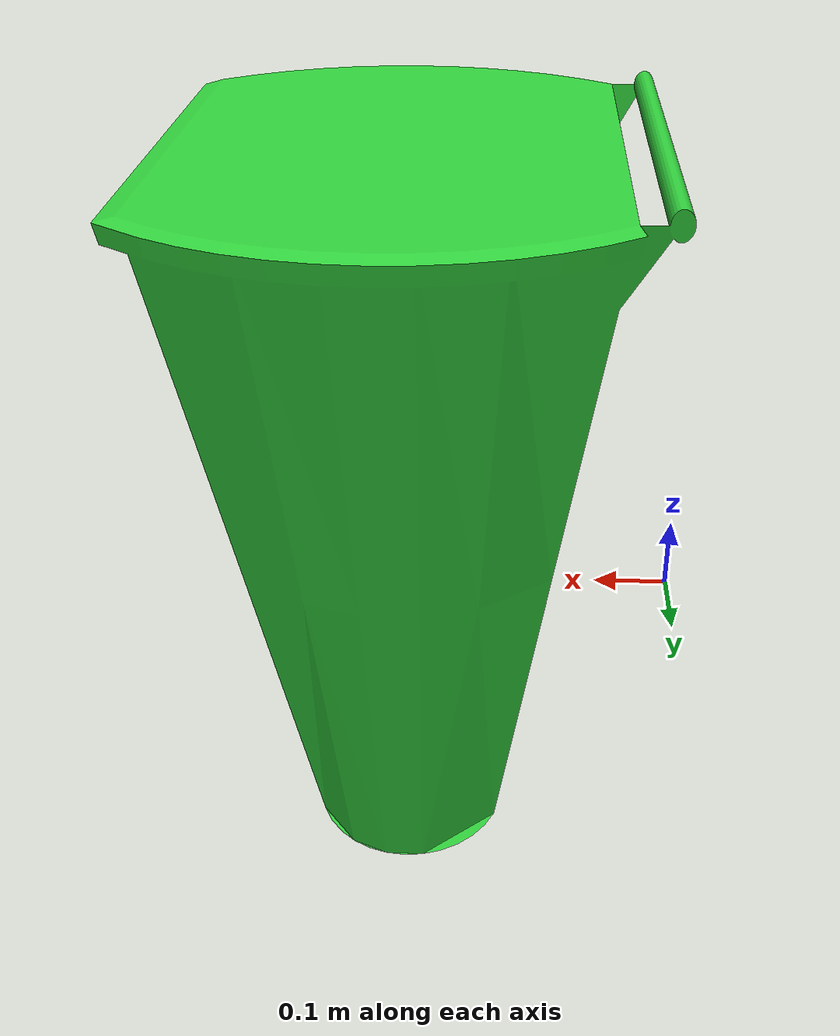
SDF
<?xml version='1.0'?>
<sdf version='1.6'>
  <model name='plastic_bin_within'>
    <link name='link_3'>
      <pose frame=''>0.009998 0.099998 0 0 -0 0</pose>
      <self_collide>0</self_collide>
      <enable_wind>0</enable_wind>
      <kinematic>0</kinematic>
      <gravity>0</gravity>
      <inertial>
        <mass>1</mass>
        <pose frame=''>0 0 0 0 -0 0</pose>
        <inertia>
          <ixx>1</ixx>
          <ixy>0</ixy>
          <ixz>0</ixz>
          <iyy>1</iyy>
          <iyz>0</iyz>
          <izz>1</izz>
        </inertia>
      </inertial>
      <visual name='visual'>
        <pose frame=''>0 0 0 0 -0 0</pose>
        <geometry>
          <mesh>
            <uri>model://green_bin/meshes/green_pyramid.stl</uri>
            <scale>0.5 0.5 0.7</scale>
          </mesh>
        </geometry>
        <material>
          <lighting>1</lighting>
          <ambient>0.188 0.811 0.231 1</ambient>
          <diffuse>0.188 0.811 0.231 1</diffuse>
          <specular>0.01 0.01 0.01 1</specular>
          <emissive>0 0 0 1</emissive>
          <shader type='vertex'>
            <normal_map>__default__</normal_map>
          </shader>
          <script>
            <name>ModelPreview_85::link_3::visual_MATERIAL_</name>
            <uri>__default__</uri>
          </script>
        </material>
        <cast_shadows>1</cast_shadows>
        <transparency>0</transparency>
      </visual>
      <collision name='collision'>
        <laser_retro>0</laser_retro>
        <max_contacts>10</max_contacts>
        <pose frame=''>0 0 0 0 -0 0</pose>
        <geometry>
          <mesh>
            <uri>/home/docker/catkin_ws/src/spot_simulation/rs_gazebo/models/miscellaneous/green_bin/meshes/green_pyramid.stl</uri>
            <scale>1 1 1</scale>
          </mesh>
        </geometry>
        <surface>
          <friction>
            <ode>
              <mu>1</mu>
              <mu2>1</mu2>
              <fdir1>0 0 0</fdir1>
              <slip1>0</slip1>
              <slip2>0</slip2>
            </ode>
            <torsional>
              <coefficient>1</coefficient>
              <patch_radius>0</patch_radius>
              <surface_radius>0</surface_radius>
              <use_patch_radius>1</use_patch_radius>
              <ode>
                <slip>0</slip>
              </ode>
            </torsional>
          </friction>
          <bounce>
            <restitution_coefficient>0</restitution_coefficient>
            <threshold>1e+06</threshold>
          </bounce>
          <contact>
            <collide_without_contact>0</collide_without_contact>
            <collide_without_contact_bitmask>1</collide_without_contact_bitmask>
            <collide_bitmask>1</collide_bitmask>
            <ode>
              <soft_cfm>0</soft_cfm>
              <soft_erp>0.2</soft_erp>
              <kp>1e+13</kp>
              <kd>1</kd>
              <max_vel>0.01</max_vel>
              <min_depth>0</min_depth>
            </ode>
            <bullet>
              <split_impulse>1</split_impulse>
              <split_impulse_penetration_threshold>-0.01</split_impulse_penetration_threshold>
              <soft_cfm>0</soft_cfm>
              <soft_erp>0.2</soft_erp>
              <kp>1e+13</kp>
              <kd>1</kd>
            </bullet>
          </contact>
        </surface>
      </collision>
    </link>
    <static>1</static>
    <allow_auto_disable>1</allow_auto_disable>
  </model>
</sdf>
